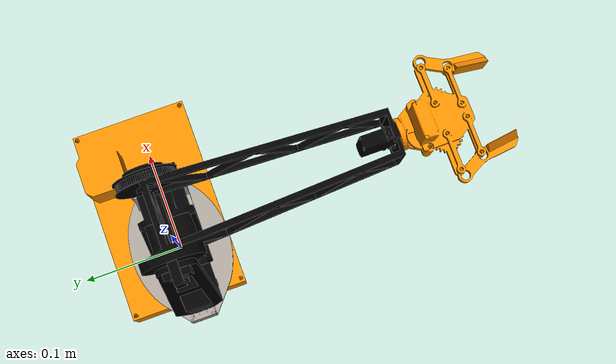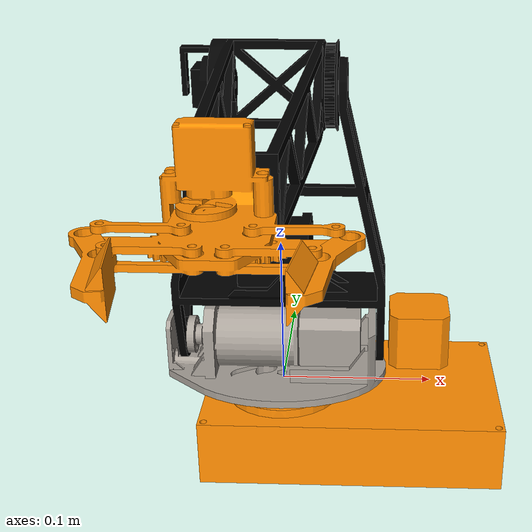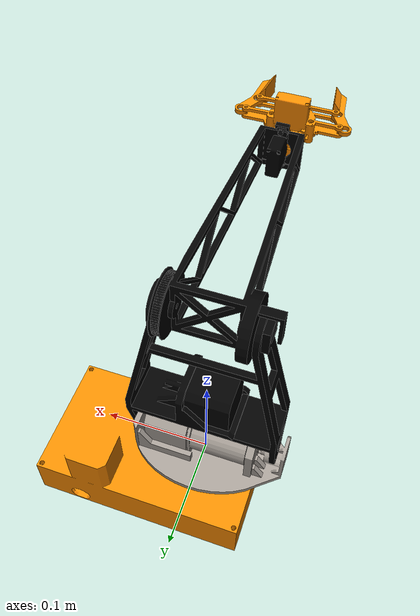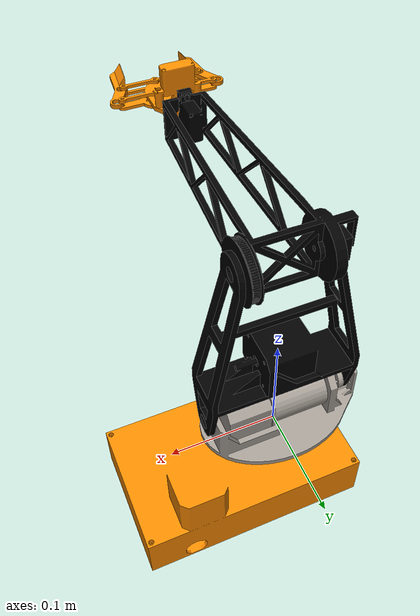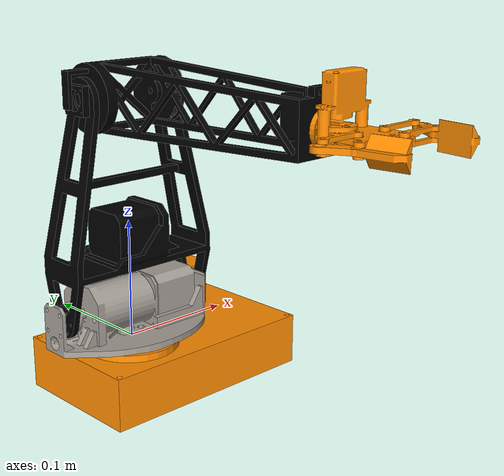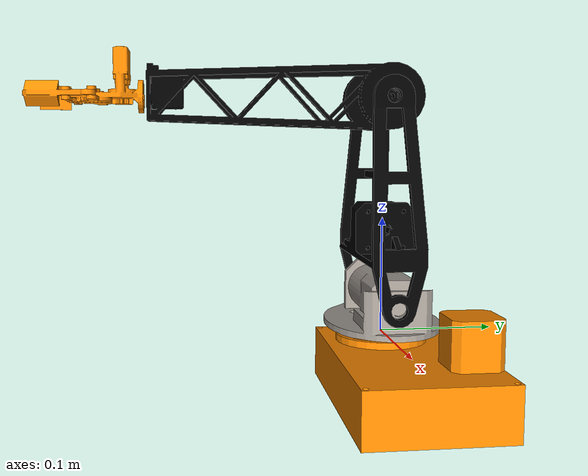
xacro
<?xml version="1.0"?>
<robot xmlns:xacro="http://www.ros.org/wiki/xacro" name="manipulator_assembly_to_URDF_v2">
    <xacro:arg name="initial_positions_file" default="initial_positions.yaml" />

    <!-- Import manipulator_assembly_to_URDF_v2 urdf file -->
    <xacro:include filename="$(find manipulator_description)/urdf/manipulator.urdf" />

    <!-- Import control_xacro -->
    <xacro:include filename="manipulator_assembly_to_URDF_v2.ros2_control.xacro" />

    <xacro:manipulator_assembly_to_URDF_v2_ros2_control name="ManipulatorSystem" initial_positions_file="$(arg initial_positions_file)"/>

</robot>

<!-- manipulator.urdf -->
<robot
  name="manipulator_assembly_to_URDF_v2">
  <link
    name="base_link">
    <inertial>
      <origin
        xyz="0.0789173614759228 0.0365054375538782 0.000146943372671578"
        rpy="0 0 0" />
      <mass
        value="0.803055334573091" />
      <inertia
        ixx="0.00058252083724049"
        ixy="5.91238997535074E-06"
        ixz="2.22761804402797E-06"
        iyy="0.0012074631537419"
        iyz="3.76810492624628E-07"
        izz="0.00158848602901175" />
    </inertial>
    <visual>
      <origin
        xyz="0 0 0"
        rpy="0 0 0" />
      <geometry>
        <mesh
          filename="package://manipulator_description/meshes/base_link.STL" />
      </geometry>
      <material
        name="">
        <color
          rgba="1 0.549019607843137 0 1" />
      </material>
    </visual>
    <collision>
      <origin
        xyz="0 0 0"
        rpy="0 0 0" />
      <geometry>
        <mesh
          filename="package://manipulator_description/meshes/base_link.STL" />
      </geometry>
    </collision>
  </link>
  <link
    name="link_1">
    <inertial>
      <origin
        xyz="0.00584957744329572 4.50291616769585E-05 0.0298263419760327"
        rpy="0 0 0" />
      <mass
        value="1.29634781607792" />
      <inertia
        ixx="0.000364644624121157"
        ixy="6.10818275959069E-07"
        ixz="5.44707780658458E-06"
        iyy="0.00057710623926429"
        iyz="4.46425764716742E-07"
        izz="0.000606404758522164" />
    </inertial>
    <visual>
      <origin
        xyz="0 0 0"
        rpy="0 0 0" />
      <geometry>
        <mesh
          filename="package://manipulator_description/meshes/link_1.STL" />
      </geometry>
      <material
        name="">
        <color
          rgba="0.647058823529412 0.619607843137255 0.588235294117647 1" />
      </material>
    </visual>
    <collision>
      <origin
        xyz="0 0 0"
        rpy="0 0 0" />
      <geometry>
        <mesh
          filename="package://manipulator_description/meshes/link_1.STL" />
      </geometry>
    </collision>
  </link>
  <joint
    name="joint_1"
    type="revolute">
    <origin
      xyz="0 0 0"
      rpy="0 0 0" />
    <parent
      link="base_link" />
    <child
      link="link_1" />
    <axis
      xyz="0 0 1" />
    <limit
      effort="1000" velocity="1000" lower="-3.14" upper="3.14" />
  </joint>
  <link
    name="link_2">
    <inertial>
      <origin
        xyz="0.0624692345713514 -0.000212499756336727 -0.00438389058830384"
        rpy="0 0 0" />
      <mass
        value="0.656682402619019" />
      <inertia
        ixx="0.000302558003494536"
        ixy="-4.52379082874761E-08"
        ixz="4.70265576996236E-05"
        iyy="0.000505085462003595"
        iyz="-5.3371760088461E-08"
        izz="0.000395081060861996" />
    </inertial>
    <visual>
      <origin
        xyz="0 0 0"
        rpy="0 0 0" />
      <geometry>
        <mesh
          filename="package://manipulator_description/meshes/link_2.STL" />
      </geometry>
      <material
        name="">
        <color
          rgba="0 0 0 1" />
      </material>
    </visual>
    <collision>
      <origin
        xyz="0 0 0"
        rpy="0 0 0" />
      <geometry>
        <mesh
          filename="package://manipulator_description/meshes/link_2.STL" />
      </geometry>
    </collision>
  </link>
  <joint
    name="joint_2"
    type="revolute">
    <origin
      xyz="-0.00025 -0.0015763 0.030821"
      rpy="-3.1416 -1.5702 0" />
    <parent
      link="link_1" />
    <child
      link="link_2" />
    <axis
      xyz="0 0 1" />
    <limit
      effort="1000" velocity="1000" lower="-1.5" upper="1.5" />
  </joint>
  <link
    name="link_3">
    <inertial>
      <origin
        xyz="0.0595640388374039 -0.000801493795255848 -0.00158564852414744"
        rpy="0 0 0" />
      <mass
        value="0.090555203298826" />
      <inertia
        ixx="8.42452666533343E-05"
        ixy="8.38734067730732E-07"
        ixz="-6.30767901595749E-06"
        iyy="0.000435612309074478"
        iyz="-6.7312341062182E-07"
        izz="0.000393286765843842" />
    </inertial>
    <visual>
      <origin
        xyz="0 0 0"
        rpy="0 0 0" />
      <geometry>
        <mesh
          filename="package://manipulator_description/meshes/link_3.STL" />
      </geometry>
      <material
        name="">
        <color
          rgba="0 0 0 1" />
      </material>
    </visual>
    <collision>
      <origin
        xyz="0 0 0"
        rpy="0 0 0" />
      <geometry>
        <mesh
          filename="package://manipulator_description/meshes/link_3.STL" />
      </geometry>
    </collision>
  </link>
  <joint
    name="joint_3"
    type="revolute">
    <origin
      xyz="0.17296 0 0.00014863"
      rpy="0.00058608 0 1.5708" />
    <parent
      link="link_2" />
    <child
      link="link_3" />
    <axis
      xyz="0 0 1" />
    <limit
      effort="1000" velocity="1000" lower="-2.0" upper="1.2" />
  </joint>
  <link
    name="gripper">
    <inertial>
      <origin
        xyz="-0.000963725610493814 0.00867649640617191 0.0259025975632264"
        rpy="0 0 0" />
      <mass
        value="0.0296543051300522" />
      <inertia
        ixx="4.7474489759306E-06"
        ixy="-3.61101084319972E-09"
        ixz="9.76002957092922E-10"
        iyy="7.05174610923127E-06"
        iyz="8.72386839008527E-08"
        izz="4.14902836862368E-06" />
    </inertial>
    <visual>
      <origin
        xyz="0 0 0"
        rpy="0 0 0" />
      <geometry>
        <mesh
          filename="package://manipulator_description/meshes/gripper.STL" />
      </geometry>
      <material
        name="">
        <color
          rgba="1 0.549019607843137 0 1" />
      </material>
    </visual>
    <collision>
      <origin
        xyz="0 0 0"
        rpy="0 0 0" />
      <geometry>
        <mesh
          filename="package://manipulator_description/meshes/gripper.STL" />
      </geometry>
    </collision>
  </link>
  <joint
    name="joint_4"
    type="revolute">
    <origin
      xyz="0.2032 0 0"
      rpy="3.14 -1.5708 0" />
    <parent
      link="link_3" />
    <child
      link="gripper" />
    <axis
      xyz="0 0 1" />
    <limit
      effort="1000" velocity="1000" lower="-1.57" upper="1.57" />
  </joint>
  <link
    name="left_finger">
    <inertial>
      <origin
        xyz="0 -0.00168229070355719 -0.00889168009611271"
        rpy="0 0 0" />
      <mass
        value="0.00362258079755188" />
      <inertia
        ixx="8.58500861755857E-07"
        ixy="-4.30692005937536E-22"
        ixz="-5.84151267204439E-22"
        iyy="6.03746320698698E-07"
        iyz="-3.66667120365105E-07"
        izz="3.41098994017298E-07" />
    </inertial>
    <visual>
      <origin
        xyz="0 0 0"
        rpy="0 0 0" />
      <geometry>
        <mesh
          filename="package://manipulator_description/meshes/left_finger.STL" />
      </geometry>
      <material
        name="">
        <color
          rgba="1 0.549019607843137 0 1" />
      </material>
    </visual>
    <collision>
      <origin
        xyz="0 0 0"
        rpy="0 0 0" />
      <geometry>
        <mesh
          filename="package://manipulator_description/meshes/left_finger.STL" />
      </geometry>
    </collision>
  </link>
  <joint
    name="lf_joint"
    type="prismatic">
    <origin
      xyz="0.032331 0 0.076026"
      rpy="0.78114 0 -1.5708" />
    <parent
      link="gripper" />
    <child
      link="left_finger" />
    <axis
      xyz="0 0 1" />
    <limit
      lower="0"
      upper="0.055"
      effort="1000"
      velocity="1" />
  </joint>
  <link
    name="right_finger">
    <inertial>
      <origin
        xyz="0 0.00159783947927411 -0.00890724345358063"
        rpy="0 0 0" />
      <mass
        value="0.00362258079755187" />
      <inertia
        ixx="8.58500861755855E-07"
        ixy="-1.88135082166572E-23"
        ixz="6.61061167921008E-23"
        iyy="6.10681157654909E-07"
        iyz="3.64108869441144E-07"
        izz="3.34164157061085E-07" />
    </inertial>
    <visual>
      <origin
        xyz="0 0 0"
        rpy="0 0 0" />
      <geometry>
        <mesh
          filename="package://manipulator_description/meshes/right_finger.STL" />
      </geometry>
      <material
        name="">
        <color
          rgba="1 0.549019607843137 0 1" />
      </material>
    </visual>
    <collision>
      <origin
        xyz="0 0 0"
        rpy="0 0 0" />
      <geometry>
        <mesh
          filename="package://manipulator_description/meshes/right_finger.STL" />
      </geometry>
    </collision>
  </link>
  <joint
    name="rf_joint"
    type="prismatic">
    <origin
      xyz="-0.030888 0 0.075969"
      rpy="-0.78257 0 -1.5708" />
    <parent
      link="gripper" />
    <child
      link="right_finger" />
    <axis
      xyz="0 0 1" />
    <limit
      lower="0"
      upper="0.055"
      effort="1000"
      velocity="1" />
  </joint>
</robot>
